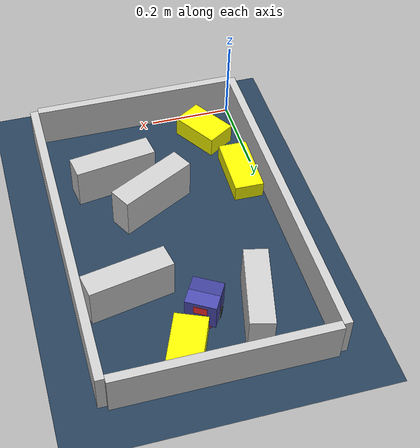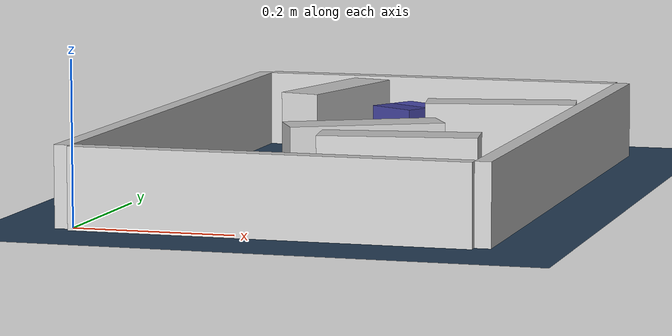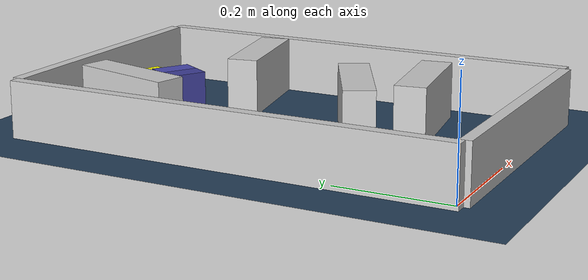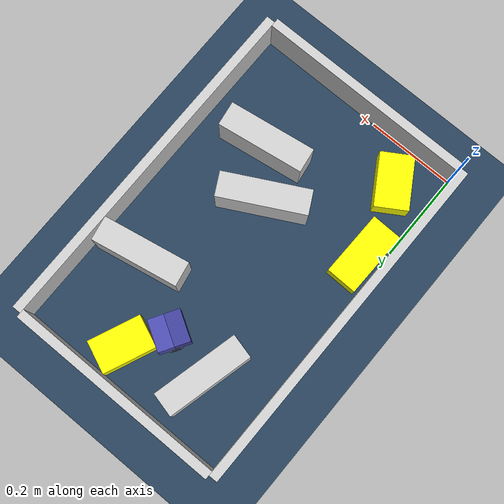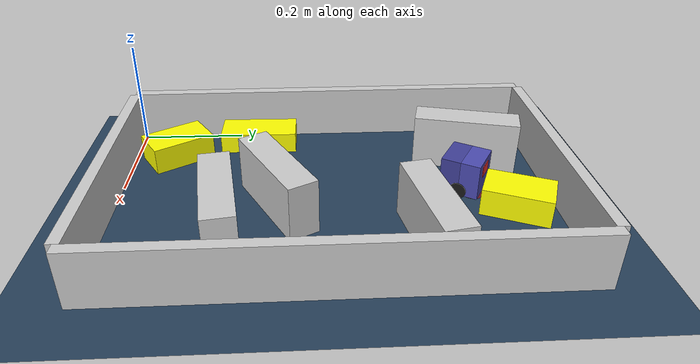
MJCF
<?xml version='1.0' encoding='utf-8'?>
<mujoco model="real_buildable">
  <compiler angle="degree" />
  <option timestep="0.002" integrator="implicitfast" iterations="100" cone="elliptic" />
  <default>
    <geom density="1" />
  </default>
  <asset>
    <texture builtin="gradient" height="3072" rgb1="0.3 0.5 0.7" rgb2="0 0 0" type="skybox" width="512" />
    <texture builtin="checker" height="300" mark="edge" markrgb="0.8 0.8 0.8" name="groundplane" rgb1="0.2 0.3 0.4" rgb2="0.1 0.2 0.3" type="2d" width="300" />
    <material name="groundplane" reflectance="0.2" texrepeat="5 5" texture="groundplane" texuniform="true" />
  </asset>
  <worldbody>
    <light dir="0 0 -1" directional="true" pos="0 0 1.5" />
    <geom name="floor" type="plane" condim="4" friction="0.5 0.005 0.001" material="groundplane" size="0 0 0.05" />
    <body name="walls">
      <geom name="wall_boundary_left" type="box" condim="4" friction="1.0 0.005 0.0001" rgba="0.8 0.8 0.8 1" pos="-0.010000 0.387500 0.050000" euler="0 0 0.000000" size="0.010000 0.397500 0.050000" />
      <geom name="wall_boundary_right" type="box" condim="4" friction="1.0 0.005 0.0001" rgba="0.8 0.8 0.8 1" pos="0.500000 0.387500 0.050000" euler="0 0 0.000000" size="0.010000 0.397500 0.050000" />
      <geom name="wall_boundary_bottom" type="box" condim="4" friction="1.0 0.005 0.0001" rgba="0.8 0.8 0.8 1" pos="0.245000 -0.010000 0.050000" euler="0 0 0.000000" size="0.245000 0.010000 0.050000" />
      <geom name="wall_boundary_top" type="box" condim="4" friction="1.0 0.005 0.0001" rgba="0.8 0.8 0.8 1" pos="0.245000 0.785000 0.050000" euler="0 0 0.000000" size="0.245000 0.010000 0.050000" />
      <geom name="wall_inner_1" type="box" condim="4" friction="1.0 0.005 0.0001" rgba="0.8 0.8 0.8 1" pos="0.345770 0.193209 0.050000" euler="0 0 8.558000" size="0.097500 0.027500 0.050000" />
      <geom name="wall_inner_2" type="box" condim="4" friction="1.0 0.005 0.0001" rgba="0.8 0.8 0.8 1" pos="0.274038 0.286843 0.050000" euler="0 0 27.860060" size="0.097500 0.027500 0.050000" />
      <geom name="wall_inner_3" type="box" condim="4" friction="1.0 0.005 0.0001" rgba="0.8 0.8 0.8 1" pos="0.389000 0.538000 0.050000" euler="0 0 10.700000" size="0.097500 0.027500 0.050000" />
      <geom name="wall_inner_4" type="box" condim="4" friction="1.0 0.005 0.0001" rgba="0.8 0.8 0.8 1" pos="0.133000 0.647000 0.050000" euler="0 0 76.100000" size="0.097500 0.027500 0.050000" />
    </body>
    <body name="car" pos="0.24308831074483095 0.62194288521292151 0.01" quat="0.87005640703052867 0 0 0.49295217677288644">
      <freejoint name="car_freejoint" />
      <inertial pos="0 0 0.0375" mass="0.35" diaginertia="0.000266 0.000266 0.000286" />
      <geom name="front_chassis_collision" type="box" pos="0.0175 0 0.0375" size="0.0175 0.035 0.0325" rgba="0.3 0.3 0.7 1" />
      <geom name="rear_chassis_collision" type="box" pos="-0.0175 0 0.0375" size="0.0175 0.035 0.0325" rgba="0.25 0.25 0.6 1" />
      <geom name="front_marker" type="box" pos="0.034 0 0.0505" size="0.002 0.015 0.01" rgba="1 0.2 0.2 1" contype="0" conaffinity="0" />
      <body name="rear_support_body" pos="-0.03 0 0.0025">
        <joint name="rear_caster_joint" type="ball" damping="0.0001" />
        <inertial pos="0 0 0" mass="0.025" diaginertia="0.000001 0.000001 0.000001" />
        <geom name="rear_support" type="sphere" pos="0 0 0" size="0.0025" friction="0 0 0" rgba="0.7 0.1 0.1 1" />
      </body>
      <body name="front_support_body" pos="0.03 0 0.0025">
        <joint name="front_caster_joint" type="ball" damping="0.0001" />
        <inertial pos="0 0 0" mass="0.025" diaginertia="0.000001 0.000001 0.000001" />
        <geom name="front_support" type="sphere" pos="0 0 0" size="0.0025" friction="0 0 0" rgba="0.1 0.7 0.1 1" />
      </body>
      <body name="left_wheel" pos="0 0.0375 0.015">
        <inertial pos="0 0 0" mass="0.05" diaginertia="0.000003 0.000006 0.000003" />
        <joint name="left_wheel_joint" type="hinge" axis="0 1 0" damping="0.01" armature="0.0001" />
        <geom name="left_wheel_collision" type="cylinder" size="0.015 0.0005" euler="90 0 0" rgba="0.1 0.1 0.1 1" />
      </body>
      <body name="right_wheel" pos="0 -0.0375 0.015">
        <inertial pos="0 0 0" mass="0.05" diaginertia="0.000003 0.000006 0.000003" />
        <joint name="right_wheel_joint" type="hinge" axis="0 1 0" damping="0.01" armature="0.0001" />
        <geom name="right_wheel_collision" type="cylinder" size="0.015 0.0005" euler="90 0 0" rgba="0.1 0.1 0.1 1" />
      </body>
    </body>
    <body name="obstacle_0_movable">
      <geom name="obstacle_0_movable" condim="4" pos="0.040043649700328268 0.24211695472891459 0.02" friction="1 0.005 0.0001" rgba="1 1 0 1" size="0.035000 0.075000 0.020000" type="box" mass="0.1" quat="0.99994112176455063 0 0 -0.010851405634856566" />
      <joint type="free" />
    </body>
    <body name="obstacle_1_movable">
      <geom name="obstacle_1_movable" condim="4" pos="0.3020618433670868 0.70386181218434296 0.025000000000000001" friction="1 0.005 0.0001" rgba="1 1 0 1" size="0.037500 0.060000 0.025000" type="box" mass="0.1" quat="0.97952933139355447 0 0 -0.20130148767382752" />
      <joint type="free" />
    </body>
    <body name="obstacle_2_movable">
      <geom name="obstacle_2_movable" condim="4" pos="0.087593000000000171 0.083153000000000143 0.025000000000000001" friction="1 0.005 0.0001" rgba="1 1 0 1" size="0.037500 0.060000 0.025000" type="box" mass="0.1" quat="0.96195587241279823 0 0 0.27320486732584454" />
      <joint type="free" />
    </body>
    <site name="goal" type="sphere" pos="0.245000 0.640000 0.0" size="0.02" rgba="1 0 0 0.5" />
  </worldbody>
  <actuator>
    <velocity name="left_wheel_drive" joint="left_wheel_joint" ctrlrange="-25 25" kv="0.75" forcerange="-0.5 0.5" />
    <velocity name="right_wheel_drive" joint="right_wheel_joint" ctrlrange="-25 25" kv="0.75" forcerange="-0.5 0.5" />
  </actuator>
</mujoco>
